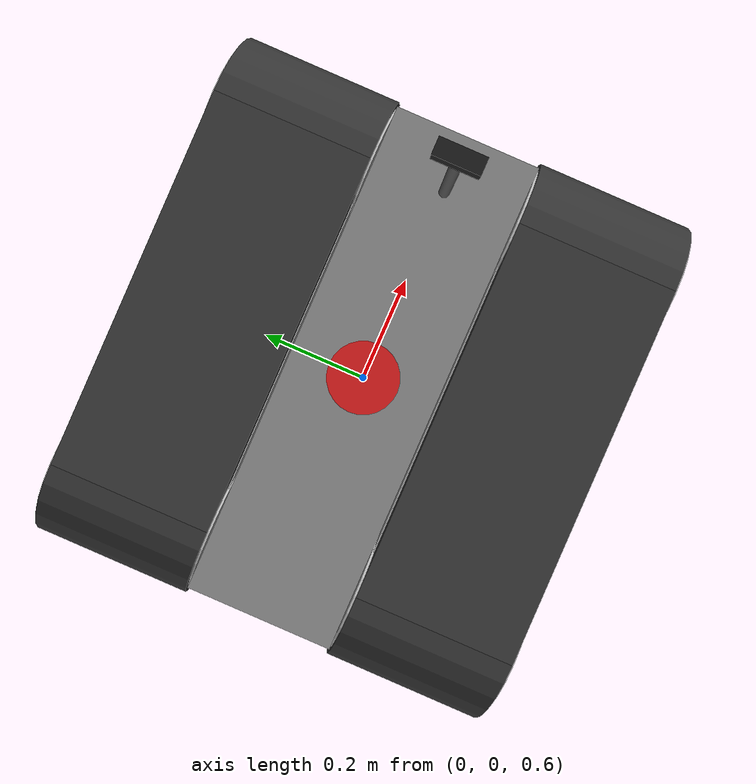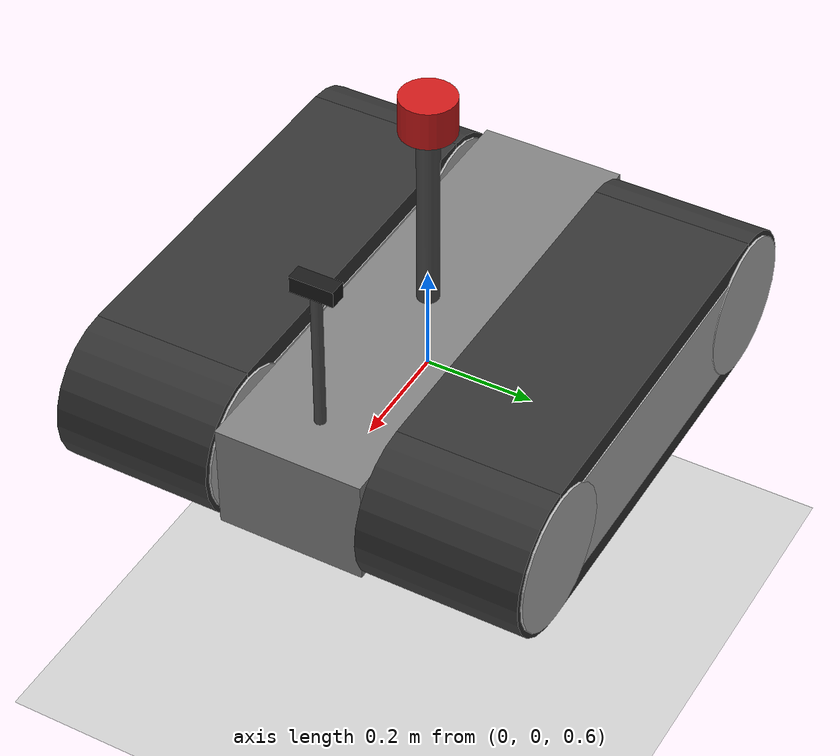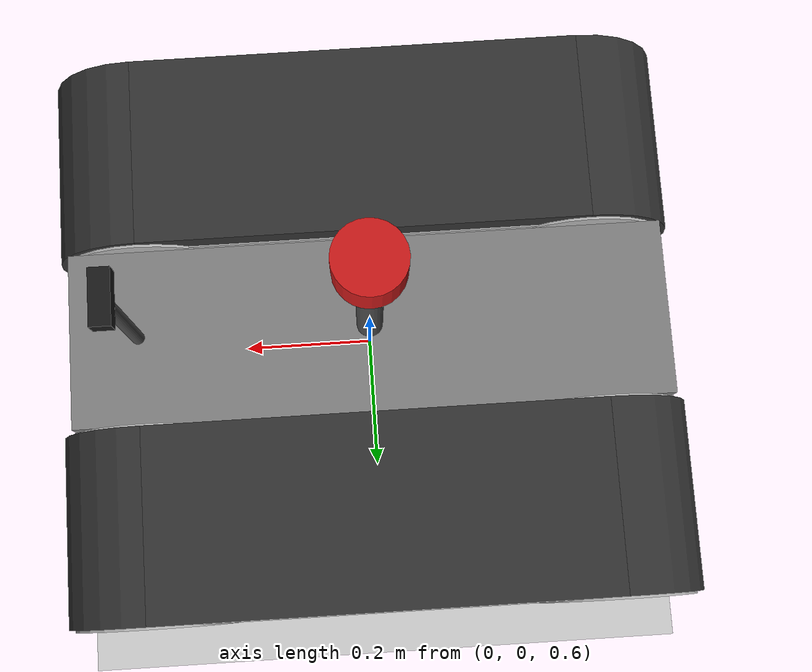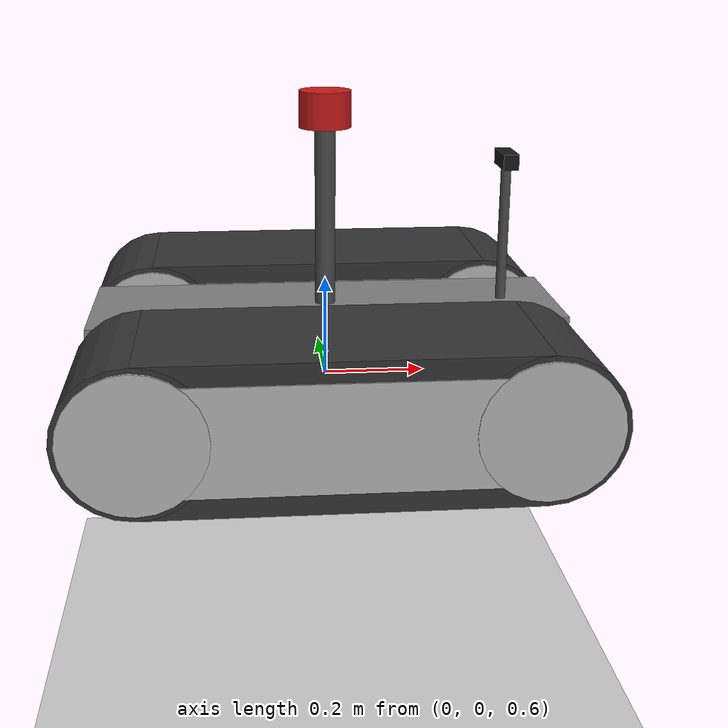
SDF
<sdf version="1.6">
 <world name="default">
  <include><uri>model://ground_plane</uri></include>
  <include><uri>model://sun</uri></include>
  <include><uri>model://two_track_robot</uri><pose>0 0 0.3 0 0 0</pose></include>
 </world>
</sdf>

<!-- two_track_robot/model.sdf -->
<sdf version='1.7'>
  <model name='two_track_robot'>
    <self_collide>false</self_collide>

    <!-- ================= BODY ================= -->
    <link name='body'>
      <visual name='lidar_mast'>
        <pose>0.0000 0 0.26965 0 0 0</pose>
        <geometry><cylinder><radius>0.020</radius><length>0.35930</length></cylinder></geometry>
        <material><ambient>0.3 0.3 0.3 1</ambient><diffuse>0.3 0.3 0.3 1</diffuse></material>
      </visual>
      <visual name='camera_mast'>
        <pose>0.3543 0 0.22885 0 0 0</pose>
        <geometry><cylinder><radius>0.010</radius><length>0.27770</length></cylinder></geometry>
        <material><ambient>0.3 0.3 0.3 1</ambient><diffuse>0.3 0.3 0.3 1</diffuse></material>
      </visual>
      <pose>0 0 0.35 0 0 0</pose>
      <inertial>
        <mass>33.151666</mass>
        <pose>0.0001169004 0 0.0001262709 0 0 0</pose>
        <inertia>
          <ixx>0.313416482</ixx>
          <ixy>0.000000</ixy>
          <ixz>-0.00148264304</ixz>
          <iyy>2.44082854</iyy>
          <iyz>0.000000</iyz>
          <izz>2.53009261</izz>
        </inertia>
      </inertial>

      <collision name='body_collision'>
        <geometry>
          <box>
            <size>0.918 0.270 0.20</size>
          </box>
        </geometry>
      </collision>

      <visual name='body_visual'>
        <geometry>
          <box>
            <size>0.918 0.270 0.20</size>
          </box>
        </geometry>
        <material>
          <ambient>0.5 0.5 0.5 1</ambient>
          <diffuse>0.5 0.5 0.5 1</diffuse>
        </material>
      </visual>

      <!-- ================= CAMARA ================= -->
      <visual name='camera_visual'>
        <pose>0.3543 0 0.3827 0 0 0</pose>
        <geometry>
          <box>
            <size>0.03 0.08 0.03</size>
          </box>
        </geometry>
        <material>
          <ambient>0.1 0.1 0.1 1</ambient>
          <diffuse>0.1 0.1 0.1 1</diffuse>
        </material>
      </visual>

      <sensor name='camera_sensor' type='camera'>
        <pose>0.3543 0 0.3827 0 0 0</pose>
        <update_rate>10</update_rate>
        <camera name='head'>
          <horizontal_fov>1.3962634</horizontal_fov>
          <image>
            <width>640</width>
            <height>480</height>
            <format>R8G8B8</format>
          </image>
          <clip>
            <near>0.02</near>
            <far>300</far>
          </clip>
          <noise>
            <type>gaussian</type>
            <mean>0.0</mean>
            <stddev>0.007</stddev>
          </noise>
        </camera>
        <plugin name='camera_controller' filename='libgazebo_ros_camera.so'>
          <alwaysOn>true</alwaysOn>
          <updateRate>0.0</updateRate>
          <cameraName>camera</cameraName>
          <imageTopicName>/camera/image_raw</imageTopicName>
          <cameraInfoTopicName>/camera/camera_info</cameraInfoTopicName>
          <frameName>example_two_track/camera_optical_frame</frameName>
          <hackBaseline>0.07</hackBaseline>
          <distortionK1>0.0</distortionK1>
          <distortionK2>0.0</distortionK2>
          <distortionK3>0.0</distortionK3>
          <distortionT1>0.0</distortionT1>
          <distortionT2>0.0</distortionT2>
        </plugin>
      </sensor>
    </link>

    <joint name='left_body_joint' type='fixed'>
      <parent>body</parent>
      <child>left_body</child>
    </joint>
    <!-- =============== LEFT TRACK ====================== -->

    <link name='left_body'>
    <pose relative_to="body">0 0.28545 0 0 -0 0</pose>
      <inertial>
        <mass>3.002202</mass>
        <inertia>
          <ixx>0.032524</ixx>
          <ixy>0.000000</ixy>
          <ixz>0.000000</ixz>
          <iyy>0.115710</iyy>
          <iyz>0.000000</iyz>
          <izz>0.128219</izz>
        </inertia>
      </inertial>
      <collision name='left_body_collision'>
        <pose>0 0 0 0 -0 0</pose>
        <geometry>
          <box>
            <size>0.65 0.30 0.2</size>
          </box>
        </geometry>
      </collision>
      <collision name='left_body_fixed_joint_lump__idler_collision_1'>
        <pose>-0.35 0 0 1.5708 -0 0</pose>
        <geometry>
          <cylinder>
            <length>0.30</length>
            <radius>0.128</radius>
          </cylinder>
        </geometry>
      </collision>
      <visual name='left_body_visual'>
        <pose>0 0 0 0 -0 0</pose>
        <geometry>
          <box>
            <size>0.65 0.296 0.2</size>
          </box>
        </geometry>
      </visual>
      <visual name='left_body_fixed_joint_lump__idler_visual_1'>
        <pose>-0.35 0 0 1.5708 -0 0</pose>
        <geometry>
          <cylinder>
            <length>0.30</length>
            <radius>0.128</radius>
          </cylinder>
        </geometry>
      </visual>
    </link>

    <joint name='left_sprocket_axle' type='revolute'>
      <pose relative_to='left_body'>0.35 0 0 0 -0 0</pose>
      <parent>left_body</parent>
      <child>left_sprocket</child>
      <axis>
        <xyz>0 1 0</xyz>
        <limit>
          <lower>-1e+16</lower>
          <upper>1e+16</upper>
                  <effort>55.946</effort>
        </limit>
        <dynamics>
          <spring_reference>0</spring_reference>
          <spring_stiffness>0</spring_stiffness>
        </dynamics>
      </axis>
    </joint>

    <link name='left_sprocket'>
      <pose relative_to='left_sprocket_axle'>0 0 0 0 -0 0</pose>
      <inertial>
        <pose>0 0 0 0 -0 0</pose>
        <mass>1.000734</mass>
        <inertia>
          <ixx>0.011605</ixx>
          <ixy>0.000000</ixy>
          <ixz>0.000000</ixz>
          <iyy>0.008198</iyy>
          <iyz>0.000000</iyz>
          <izz>0.011605</izz>
        </inertia>
      </inertial>
      <collision name='sprocket_collision'>
        <pose>0 0 0 1.5708 -0 0</pose>
        <geometry>
          <cylinder>
            <length>0.30</length>
            <radius>0.128</radius>
          </cylinder>
        </geometry>
      </collision>
      <visual name='sprocket_visual'>
        <pose>0 0 0 1.5708 -0 0</pose>
        <geometry>
          <cylinder>
            <length>0.30</length>
            <radius>0.128</radius>
          </cylinder>
        </geometry>
      </visual>
    </link>

    <link name='left_track_straight_segment_link0'>
      <pose relative_to="left_body">-0.35 0 0.138 0 -0 0</pose>
      <inertial>
        <pose>0.35 0 -0.02 0 -0 0</pose>
        <mass>0.375275</mass>
        <inertia>
          <ixx>0.003002</ixx>
          <ixy>0.000000</ixy>
          <ixz>0.000000</ixz>
          <iyy>0.023017</iyy>
          <iyz>0.000000</iyz>
          <izz>0.026019</izz>
        </inertia>
      </inertial>
      <collision name='collision'>
        <pose>0.35 0 -0.02 0 -0 0</pose>
        <geometry>
          <box>
            <size>0.70 0.3 0.04</size>
          </box>
        </geometry>
        <surface>
          <friction>
            <ode>
              <mu>1.0</mu>
              <mu2>0.75</mu2>
              <fdir1>1 0 0</fdir1>
            </ode>
          </friction>
          <contact>
            <ode>
              <kp>1000000.0</kp>
              <kd>1.0</kd>
              <min_depth>0.003</min_depth>
              <max_vel>1.0</max_vel>
            </ode>
          </contact>
        </surface>
      </collision>
      <visual name='visual'>
        <pose>0.35 0 -0.02 0 -0 0</pose>
        <geometry>
          <box>
            <size>0.70 0.292 0.04</size>
          </box>
        </geometry>
        <material>
          <ambient>0.1 0.1 0.3 1</ambient>
          <diffuse>0.2 0.2 0.2 1</diffuse>
          <specular>0 0 0 1</specular>
          <emissive>0 0 0 1</emissive>
        </material>
      </visual>
    </link>

    <link name='left_track_straight_segment_link1'>
      <pose relative_to="left_body">0.35 0 -0.138 3.14159 0 3.14159</pose>
      <inertial>
        <pose>0.35 0 -0.02 0 -0 0</pose>
        <mass>0.375275</mass>
        <inertia>
          <ixx>0.003002</ixx>
          <ixy>0.000000</ixy>
          <ixz>0.000000</ixz>
          <iyy>0.023017</iyy>
          <iyz>0.000000</iyz>
          <izz>0.026019</izz>
        </inertia>
      </inertial>
      <collision name='collision'>
        <pose>0.35 0 -0.02 0 -0 0</pose>
        <geometry>
          <box>
            <size>0.70 0.3 0.04</size>
          </box>
        </geometry>
        <surface>
          <friction>
            <ode>
              <mu>1.0</mu>
              <mu2>0.75</mu2>
              <fdir1>1 0 0</fdir1>
            </ode>
          </friction>
          <contact>
            <ode>
              <kp>1000000.0</kp>
              <kd>1.0</kd>
              <min_depth>0.003</min_depth>
              <max_vel>1.0</max_vel>
            </ode>
          </contact>
        </surface>
      </collision>
      <visual name='visual'>
        <pose>0.35 0 -0.02 0 -0 0</pose>
        <geometry>
          <box>
            <size>0.70 0.292 0.04</size>
          </box>
        </geometry>
        <material>
          <ambient>0.1 0.1 0.3 1</ambient>
          <diffuse>0.2 0.2 0.2 1</diffuse>
          <specular>0 0 0 1</specular>
          <emissive>0 0 0 1</emissive>
        </material>
      </visual>
    </link>

    <joint name='left_track_straight_segment_joint0' type='prismatic'>
      <child>left_track_straight_segment_link0</child>
      <parent>left_body</parent>
      <axis>
        <xyz>1 0 0</xyz>
        <use_parent_model_frame>0</use_parent_model_frame>
        <limit>
          <lower>-1e+16</lower>
          <upper>1e+16</upper>
        </limit>
      </axis>
      <physics>
        <ode>
          <implicit_spring_damper>1</implicit_spring_damper>
        </ode>
      </physics>
    </joint>

    <joint name='left_track_straight_segment_joint1' type='prismatic'>
      <child>left_track_straight_segment_link1</child>
      <parent>left_body</parent>
      <axis>
        <xyz>1 0 0</xyz>
        <use_parent_model_frame>0</use_parent_model_frame>
        <limit>
          <lower>-1e+16</lower>
          <upper>1e+16</upper>
        </limit>
      </axis>
      <physics>
        <ode>
          <implicit_spring_damper>1</implicit_spring_damper>
        </ode>
      </physics>
    </joint>

    <link name='left_track_arc_segment_link0'>
      <pose relative_to="left_body">0.35 0 0.138 0 -0 0</pose>
      <inertial>
        <pose>0 0 -0.138 1.5708 -0 0</pose>
        <mass>0.375275</mass>
        <inertia>
          <ixx>0.005004</ixx>
          <ixy>0.000000</ixy>
          <ixz>0.000000</ixz>
          <iyy>0.005004</iyy>
          <iyz>0.000000</iyz>
          <izz>0.001501</izz>
        </inertia>
      </inertial>
      <collision name='collision'>
        <pose>0 0 -0.138 1.5708 -0 0</pose>
        <geometry>
          <cylinder>
            <length>0.3</length>
            <radius>0.138</radius>
          </cylinder>
        </geometry>
        <surface>
          <friction>
            <ode>
              <mu>1.0</mu>
              <mu2>0.75</mu2>
              <fdir1>1 0 0</fdir1>
            </ode>
          </friction>
          <contact>
            <ode>
              <kp>1000000.0</kp>
              <kd>1.0</kd>
              <min_depth>0.003</min_depth>
              <max_vel>1.0</max_vel>
            </ode>
          </contact>
        </surface>
      </collision>
      <visual name='visual'>
        <pose>0 0 -0.138 1.5708 -0 0</pose>
        <geometry>
          <cylinder>
            <length>0.292</length>
            <radius>0.138</radius>
          </cylinder>
        </geometry>
        <material>
          <ambient>0.1 0.1 0.3 1</ambient>
          <diffuse>0.2 0.2 0.2 1</diffuse>
          <specular>0 0 0 1</specular>
          <emissive>0 0 0 1</emissive>
        </material>
      </visual>
    </link>

    <link name='left_track_arc_segment_link1'>
      <pose relative_to="left_body">-0.35 0 -0.138 3.14159 0 3.14159</pose>
      <inertial>
        <pose>0 0 -0.138 1.5708 -0 0</pose>
        <mass>0.375275</mass>
        <inertia>
          <ixx>0.005004</ixx>
          <ixy>0.000000</ixy>
          <ixz>0.000000</ixz>
          <iyy>0.005004</iyy>
          <iyz>0.000000</iyz>
          <izz>0.001501</izz>
        </inertia>
      </inertial>
      <collision name='collision'>
        <pose>0 0 -0.138 1.5708 -0 0</pose>
        <geometry>
          <cylinder>
            <length>0.3</length>
            <radius>0.138</radius>
          </cylinder>
        </geometry>
        <surface>
          <friction>
            <ode>
              <mu>1.0</mu>
              <mu2>0.75</mu2>
              <fdir1>1 0 0</fdir1>
            </ode>
          </friction>
          <contact>
            <ode>
              <kp>1000000.0</kp>
              <kd>1.0</kd>
              <min_depth>0.003</min_depth>
              <max_vel>1.0</max_vel>
            </ode>
          </contact>
        </surface>
      </collision>
      <visual name='visual'>
        <pose>0 0 -0.138 1.5708 -0 0</pose>
        <geometry>
          <cylinder>
            <length>0.292</length>
            <radius>0.138</radius>
          </cylinder>
        </geometry>
        <material>
          <ambient>0.1 0.1 0.3 1</ambient>
          <diffuse>0.2 0.2 0.2 1</diffuse>
          <specular>0 0 0 1</specular>
          <emissive>0 0 0 1</emissive>
        </material>
      </visual>
    </link>

    <joint name='left_track_arc_segment_joint0' type='revolute'>
      <child>left_track_arc_segment_link0</child>
      <parent>left_body</parent>
      <pose>0 0 -0.138 0 -0 0</pose>
      <axis>
        <xyz>0 1 0</xyz>
        <use_parent_model_frame>0</use_parent_model_frame>
        <limit>
          <lower>-1e+16</lower>
          <upper>1e+16</upper>
        </limit>
      </axis>
      <physics>
        <ode>
          <implicit_spring_damper>1</implicit_spring_damper>
        </ode>
      </physics>
    </joint>

    <joint name='left_track_arc_segment_joint1' type='revolute'>
      <child>left_track_arc_segment_link1</child>
      <parent>left_body</parent>
      <pose>0 0 -0.138 0 -0 0</pose>
      <axis>
        <xyz>0 1 0</xyz>
        <use_parent_model_frame>0</use_parent_model_frame>
        <limit>
          <lower>-1e+16</lower>
          <upper>1e+16</upper>
        </limit>
      </axis>
      <physics>
        <ode>
          <implicit_spring_damper>1</implicit_spring_damper>
        </ode>
      </physics>
    </joint>

    <plugin name='left_track' filename='libContinuousTrack.so'>
      <sprocket>
        <joint>left_sprocket_axle</joint>
        <pitch_diameter>0.276</pitch_diameter>
      </sprocket>
      <trajectory>
        <segment>
          <joint>left_track_straight_segment_joint0</joint>
          <end_position>0.70</end_position>
        </segment>
        <segment>
          <joint>left_track_arc_segment_joint0</joint>
          <end_position>3.141592653589793</end_position>
        </segment>
        <segment>
          <joint>left_track_straight_segment_joint1</joint>
          <end_position>0.70</end_position>
        </segment>
        <segment>
          <joint>left_track_arc_segment_joint1</joint>
          <end_position>3.141592653589793</end_position>
        </segment>
      </trajectory>
      <pattern>
        <elements_per_round>40</elements_per_round>
        <element>
          <collision name='collision'>
            <pose>0 0 0 0 0 0</pose>
            <geometry>
              <box>
                <size>0.02 0.3 0.02</size>
              </box>
            </geometry>
            <surface>
              <friction>
                <ode>
                  <mu>1.0</mu>
                  <mu2>0.75</mu2>
                  <fdir1>1 0 0</fdir1>
                </ode>
              </friction>
              <contact>
                <ode>
                  <kp>1000000.0</kp>
                  <kd>1.0</kd>
                  <min_depth>0.003</min_depth>
                  <max_vel>1.0</max_vel>
                </ode>
              </contact>
            </surface>
          </collision>
          <visual name='visual'>
            <pose>0 0 0 0 0 0</pose>
            <geometry>
              <box>
                <size>0.02 0.3 0.02</size>
              </box>
            </geometry>
            <material>
              <ambient>0.1 0.1 0.3 1</ambient>
              <diffuse>0.2 0.2 0.2 1</diffuse>
              <specular>0 0 0 1</specular>
              <emissive>0 0 0 1</emissive>
            </material>
          </visual>
        </element>
        <element>
          <collision name='collision'>
            <pose>0 0.15 0 1.5707963267948966 0 0</pose>
            <geometry>
              <polyline>
                <point>-0.02 -0.01</point>
                <point>-0.01 0.01</point>
                <point>0.01 0.01</point>
                <point>0.02 -0.01</point>
                <height>0.3</height>
              </polyline>
            </geometry>
            <surface>
              <friction>
                <ode>
                  <mu>1.0</mu>
                  <mu2>0.75</mu2>
                  <fdir1>1 0 0</fdir1>
                </ode>
              </friction>
              <contact>
                <ode>
                  <kp>1000000.0</kp>
                  <kd>1.0</kd>
                  <min_depth>0.003</min_depth>
                  <max_vel>1.0</max_vel>
                </ode>
              </contact>
            </surface>
          </collision>
          <visual name='visual'>
            <pose>0 0.15 0 1.5707963267948966 0 0</pose>
            <geometry>
              <polyline>
                <point>-0.02 -0.01</point>
                <point>-0.01 0.01</point>
                <point>0.01 0.01</point>
                <point>0.02 -0.01</point>
                <height>0.3</height>
              </polyline>
            </geometry>
            <material>
              <ambient>0.1 0.1 0.3 1</ambient>
              <diffuse>0.2 0.2 0.2 1</diffuse>
              <specular>0 0 0 1</specular>
              <emissive>0 0 0 1</emissive>
            </material>
          </visual>
        </element>
      </pattern>
    </plugin>

    <frame name='left_idler_axle' attached_to='left_body'>
      <pose relative_to="left_body">-0.35 0 0 0 -0 0</pose>
    </frame>
    <frame name='left_idler' attached_to='left_idler_axle'/>

    <!-- =============== RIGHT TRACK ===================== -->

    <joint name='right_body_joint' type='fixed'>
      <parent>body</parent>
      <child>right_body</child>
    </joint>

    <link name='right_body'>
    <pose relative_to="body">0 -0.28545 0 0 -0 0</pose>
      <inertial>
        <mass>3.002202</mass>
        <inertia>
          <ixx>0.032524</ixx>
          <ixy>0.000000</ixy>
          <ixz>0.000000</ixz>
          <iyy>0.115710</iyy>
          <iyz>0.000000</iyz>
          <izz>0.128219</izz>
        </inertia>
      </inertial>
      <collision name='right_body_collision'>
        <pose>0 0 0 0 -0 0</pose>
        <geometry>
          <box>
            <size>0.65 0.30 0.2</size>
          </box>
        </geometry>
      </collision>
      <collision name='right_body_fixed_joint_lump__idler_collision_1'>
        <pose>-0.35 0 0 1.5708 -0 0</pose>
        <geometry>
          <cylinder>
            <length>0.30</length>
            <radius>0.128</radius>
          </cylinder>
        </geometry>
      </collision>
      <visual name='right_body_visual'>
        <pose>0 0 0 0 -0 0</pose>
        <geometry>
          <box>
            <size>0.65 0.296 0.2</size>
          </box>
        </geometry>
      </visual>
      <visual name='right_body_fixed_joint_lump__idler_visual_1'>
        <pose>-0.35 0 0 1.5708 -0 0</pose>
        <geometry>
          <cylinder>
            <length>0.30</length>
            <radius>0.128</radius>
          </cylinder>
        </geometry>
      </visual>
    </link>

    <joint name='right_sprocket_axle' type='revolute'>
      <pose relative_to='right_body'>0.35 0 0 0 -0 0</pose>
      <parent>right_body</parent>
      <child>right_sprocket</child>
      <axis>
        <xyz>0 1 0</xyz>
        <limit>
          <lower>-1e+16</lower>
          <upper>1e+16</upper>
                  <effort>55.946</effort>
        </limit>
        <dynamics>
          <spring_reference>0</spring_reference>
          <spring_stiffness>0</spring_stiffness>
        </dynamics>
      </axis>
    </joint>

    <link name='right_sprocket'>
      <pose relative_to='right_sprocket_axle'>0 0 0 0 -0 0</pose>
      <inertial>
        <pose>0 0 0 0 -0 0</pose>
        <mass>1.000734</mass>
        <inertia>
          <ixx>0.011605</ixx>
          <ixy>0.000000</ixy>
          <ixz>0.000000</ixz>
          <iyy>0.008198</iyy>
          <iyz>0.000000</iyz>
          <izz>0.011605</izz>
        </inertia>
      </inertial>
      <collision name='sprocket_collision'>
        <pose>0 0 0 1.5708 -0 0</pose>
        <geometry>
          <cylinder>
            <length>0.30</length>
            <radius>0.128</radius>
          </cylinder>
        </geometry>
      </collision>
      <visual name='sprocket_visual'>
        <pose>0 0 0 1.5708 -0 0</pose>
        <geometry>
          <cylinder>
            <length>0.30</length>
            <radius>0.128</radius>
          </cylinder>
        </geometry>
      </visual>
    </link>

    <link name='right_track_straight_segment_link0'>
      <pose relative_to="right_body">-0.35 0 0.138 0 -0 0</pose>
      <inertial>
        <pose>0.35 0 -0.02 0 -0 0</pose>
        <mass>0.375275</mass>
        <inertia>
          <ixx>0.003002</ixx>
          <ixy>0.000000</ixy>
          <ixz>0.000000</ixz>
          <iyy>0.023017</iyy>
          <iyz>0.000000</iyz>
          <izz>0.026019</izz>
        </inertia>
      </inertial>
      <collision name='collision'>
        <pose>0.35 0 -0.02 0 -0 0</pose>
        <geometry>
          <box>
            <size>0.70 0.3 0.04</size>
          </box>
        </geometry>
        <surface>
          <friction>
            <ode>
              <mu>1.0</mu>
              <mu2>0.75</mu2>
              <fdir1>1 0 0</fdir1>
            </ode>
          </friction>
          <contact>
            <ode>
              <kp>1000000.0</kp>
              <kd>1.0</kd>
              <min_depth>0.003</min_depth>
              <max_vel>1.0</max_vel>
            </ode>
          </contact>
        </surface>
      </collision>
      <visual name='visual'>
        <pose>0.35 0 -0.02 0 -0 0</pose>
        <geometry>
          <box>
            <size>0.70 0.292 0.04</size>
          </box>
        </geometry>
        <material>
          <ambient>0.1 0.1 0.3 1</ambient>
          <diffuse>0.2 0.2 0.2 1</diffuse>
          <specular>0 0 0 1</specular>
          <emissive>0 0 0 1</emissive>
        </material>
      </visual>
    </link>

    <link name='right_track_straight_segment_link1'>
      <pose relative_to="right_body">0.35 0 -0.138 3.14159 0 3.14159</pose>
      <inertial>
        <pose>0.35 0 -0.02 0 -0 0</pose>
        <mass>0.375275</mass>
        <inertia>
          <ixx>0.003002</ixx>
          <ixy>0.000000</ixy>
          <ixz>0.000000</ixz>
          <iyy>0.023017</iyy>
          <iyz>0.000000</iyz>
          <izz>0.026019</izz>
        </inertia>
      </inertial>
      <collision name='collision'>
        <pose>0.35 0 -0.02 0 -0 0</pose>
        <geometry>
          <box>
            <size>0.70 0.3 0.04</size>
          </box>
        </geometry>
        <surface>
          <friction>
            <ode>
              <mu>1.0</mu>
              <mu2>0.75</mu2>
              <fdir1>1 0 0</fdir1>
            </ode>
          </friction>
          <contact>
            <ode>
              <kp>1000000.0</kp>
              <kd>1.0</kd>
              <min_depth>0.003</min_depth>
              <max_vel>1.0</max_vel>
            </ode>
          </contact>
        </surface>
      </collision>
      <visual name='visual'>
        <pose>0.35 0 -0.02 0 -0 0</pose>
        <geometry>
          <box>
            <size>0.70 0.292 0.04</size>
          </box>
        </geometry>
        <material>
          <ambient>0.1 0.1 0.3 1</ambient>
          <diffuse>0.2 0.2 0.2 1</diffuse>
          <specular>0 0 0 1</specular>
          <emissive>0 0 0 1</emissive>
        </material>
      </visual>
    </link>

    <joint name='right_track_straight_segment_joint0' type='prismatic'>
      <child>right_track_straight_segment_link0</child>
      <parent>right_body</parent>
      <axis>
        <xyz>1 0 0</xyz>
        <use_parent_model_frame>0</use_parent_model_frame>
        <limit>
          <lower>-1e+16</lower>
          <upper>1e+16</upper>
        </limit>
      </axis>
      <physics>
        <ode>
          <implicit_spring_damper>1</implicit_spring_damper>
        </ode>
      </physics>
    </joint>

    <joint name='right_track_straight_segment_joint1' type='prismatic'>
      <child>right_track_straight_segment_link1</child>
      <parent>right_body</parent>
      <axis>
        <xyz>1 0 0</xyz>
        <use_parent_model_frame>0</use_parent_model_frame>
        <limit>
          <lower>-1e+16</lower>
          <upper>1e+16</upper>
        </limit>
      </axis>
      <physics>
        <ode>
          <implicit_spring_damper>1</implicit_spring_damper>
        </ode>
      </physics>
    </joint>

    <link name='right_track_arc_segment_link0'>
      <pose relative_to="right_body">0.35 0 0.138 0 -0 0</pose>
      <inertial>
        <pose>0 0 -0.138 1.5708 -0 0</pose>
        <mass>0.375275</mass>
        <inertia>
          <ixx>0.005004</ixx>
          <ixy>0.000000</ixy>
          <ixz>0.000000</ixz>
          <iyy>0.005004</iyy>
          <iyz>0.000000</iyz>
          <izz>0.001501</izz>
        </inertia>
      </inertial>
      <collision name='collision'>
        <pose>0 0 -0.138 1.5708 -0 0</pose>
        <geometry>
          <cylinder>
            <length>0.3</length>
            <radius>0.138</radius>
          </cylinder>
        </geometry>
        <surface>
          <friction>
            <ode>
              <mu>1.0</mu>
              <mu2>0.75</mu2>
              <fdir1>1 0 0</fdir1>
            </ode>
          </friction>
          <contact>
            <ode>
              <kp>1000000.0</kp>
              <kd>1.0</kd>
              <min_depth>0.003</min_depth>
              <max_vel>1.0</max_vel>
            </ode>
          </contact>
        </surface>
      </collision>
      <visual name='visual'>
        <pose>0 0 -0.138 1.5708 -0 0</pose>
        <geometry>
          <cylinder>
            <length>0.292</length>
            <radius>0.138</radius>
          </cylinder>
        </geometry>
        <material>
          <ambient>0.1 0.1 0.3 1</ambient>
          <diffuse>0.2 0.2 0.2 1</diffuse>
          <specular>0 0 0 1</specular>
          <emissive>0 0 0 1</emissive>
        </material>
      </visual>
    </link>

    <link name='right_track_arc_segment_link1'>
      <pose relative_to="right_body">-0.35 0 -0.138 3.14159 0 3.14159</pose>
      <inertial>
        <pose>0 0 -0.138 1.5708 -0 0</pose>
        <mass>0.375275</mass>
        <inertia>
          <ixx>0.005004</ixx>
          <ixy>0.000000</ixy>
          <ixz>0.000000</ixz>
          <iyy>0.005004</iyy>
          <iyz>0.000000</iyz>
          <izz>0.001501</izz>
        </inertia>
      </inertial>
      <collision name='collision'>
        <pose>0 0 -0.138 1.5708 -0 0</pose>
        <geometry>
          <cylinder>
            <length>0.3</length>
            <radius>0.138</radius>
          </cylinder>
        </geometry>
        <surface>
          <friction>
            <ode>
              <mu>1.0</mu>
              <mu2>0.75</mu2>
              <fdir1>1 0 0</fdir1>
            </ode>
          </friction>
          <contact>
            <ode>
              <kp>1000000.0</kp>
              <kd>1.0</kd>
              <min_depth>0.003</min_depth>
              <max_vel>1.0</max_vel>
            </ode>
          </contact>
        </surface>
      </collision>
      <visual name='visual'>
        <pose>0 0 -0.138 1.5708 -0 0</pose>
        <geometry>
          <cylinder>
            <length>0.292</length>
            <radius>0.138</radius>
          </cylinder>
        </geometry>
        <material>
          <ambient>0.1 0.1 0.3 1</ambient>
          <diffuse>0.2 0.2 0.2 1</diffuse>
          <specular>0 0 0 1</specular>
          <emissive>0 0 0 1</emissive>
        </material>
      </visual>
    </link>

    <joint name='right_track_arc_segment_joint0' type='revolute'>
      <child>right_track_arc_segment_link0</child>
      <parent>right_body</parent>
      <pose>0 0 -0.138 0 -0 0</pose>
      <axis>
        <xyz>0 1 0</xyz>
        <use_parent_model_frame>0</use_parent_model_frame>
        <limit>
          <lower>-1e+16</lower>
          <upper>1e+16</upper>
        </limit>
      </axis>
      <physics>
        <ode>
          <implicit_spring_damper>1</implicit_spring_damper>
        </ode>
      </physics>
    </joint>

    <joint name='right_track_arc_segment_joint1' type='revolute'>
      <child>right_track_arc_segment_link1</child>
      <parent>right_body</parent>
      <pose>0 0 -0.138 0 -0 0</pose>
      <axis>
        <xyz>0 1 0</xyz>
        <use_parent_model_frame>0</use_parent_model_frame>
        <limit>
          <lower>-1e+16</lower>
          <upper>1e+16</upper>
        </limit>
      </axis>
      <physics>
        <ode>
          <implicit_spring_damper>1</implicit_spring_damper>
        </ode>
      </physics>
    </joint>

    <plugin name='right_track' filename='libContinuousTrack.so'>
      <sprocket>
        <joint>right_sprocket_axle</joint>
        <pitch_diameter>0.276</pitch_diameter>
      </sprocket>
      <trajectory>
        <segment>
          <joint>right_track_straight_segment_joint0</joint>
          <end_position>0.70</end_position>
        </segment>
        <segment>
          <joint>right_track_arc_segment_joint0</joint>
          <end_position>3.141592653589793</end_position>
        </segment>
        <segment>
          <joint>right_track_straight_segment_joint1</joint>
          <end_position>0.70</end_position>
        </segment>
        <segment>
          <joint>right_track_arc_segment_joint1</joint>
          <end_position>3.141592653589793</end_position>
        </segment>
      </trajectory>
      <pattern>
        <elements_per_round>40</elements_per_round>
        <element>
          <collision name='collision'>
            <pose>0 0 0 0 0 0</pose>
            <geometry>
              <box>
                <size>0.02 0.3 0.02</size>
              </box>
            </geometry>
            <surface>
              <friction>
                <ode>
                  <mu>1.0</mu>
                  <mu2>0.75</mu2>
                  <fdir1>1 0 0</fdir1>
                </ode>
              </friction>
              <contact>
                <ode>
                  <kp>1000000.0</kp>
                  <kd>1.0</kd>
                  <min_depth>0.003</min_depth>
                  <max_vel>1.0</max_vel>
                </ode>
              </contact>
            </surface>
          </collision>
          <visual name='visual'>
            <pose>0 0 0 0 0 0</pose>
            <geometry>
              <box>
                <size>0.02 0.3 0.02</size>
              </box>
            </geometry>
            <material>
              <ambient>0.1 0.1 0.3 1</ambient>
              <diffuse>0.2 0.2 0.2 1</diffuse>
              <specular>0 0 0 1</specular>
              <emissive>0 0 0 1</emissive>
            </material>
          </visual>
        </element>
        <element>
          <collision name='collision'>
            <pose>0 0.15 0 1.5707963267948966 0 0</pose>
            <geometry>
              <polyline>
                <point>-0.02 -0.01</point>
                <point>-0.01 0.01</point>
                <point>0.01 0.01</point>
                <point>0.02 -0.01</point>
                <height>0.3</height>
              </polyline>
            </geometry>
            <surface>
              <friction>
                <ode>
                  <mu>1.0</mu>
                  <mu2>0.75</mu2>
                  <fdir1>1 0 0</fdir1>
                </ode>
              </friction>
              <contact>
                <ode>
                  <kp>1000000.0</kp>
                  <kd>1.0</kd>
                  <min_depth>0.003</min_depth>
                  <max_vel>1.0</max_vel>
                </ode>
              </contact>
            </surface>
          </collision>
          <visual name='visual'>
            <pose>0 0.15 0 1.5707963267948966 0 0</pose>
            <geometry>
              <polyline>
                <point>-0.02 -0.01</point>
                <point>-0.01 0.01</point>
                <point>0.01 0.01</point>
                <point>0.02 -0.01</point>
                <height>0.3</height>
              </polyline>
            </geometry>
            <material>
              <ambient>0.1 0.1 0.3 1</ambient>
              <diffuse>0.2 0.2 0.2 1</diffuse>
              <specular>0 0 0 1</specular>
              <emissive>0 0 0 1</emissive>
            </material>
          </visual>
        </element>
      </pattern>
    </plugin>

    <frame name='right_idler_axle' attached_to='right_body'>
      <pose relative_to="right_body">-0.35 0 0 0 -0 0</pose>
    </frame>
    <frame name='right_idler' attached_to='right_idler_axle'/>

    <!-- Gazebo ROS Control Plugin -->
    <plugin name='gazebo_ros_control' filename='libgazebo_ros_control.so'>
      <robotNamespace>/example_two_track</robotNamespace>
      <robotSimType>gazebo_ros_control/DefaultRobotHWSim</robotSimType>
      <legacyModeNS>false</legacyModeNS>
    </plugin>

    <!-- ================= VELODYNE LIDAR ================= -->

    <joint name='velodyne_base_mount_joint' type='fixed'>
      <parent>body</parent>
      <child>velodyne_base_link</child>
    </joint>

    <link name='velodyne_base_link'>
      <pose relative_to="body">0 0 0.4843 0 0 0</pose>
      <inertial>
        <mass>0.825345</mass>
        <inertia>
          <ixx>0.000853</ixx>
          <ixy>0.000000</ixy>
          <ixz>0.000000</ixz>
          <iyy>0.000853</iyy>
          <iyz>0.000000</iyz>
          <izz>0.001032</izz>
        </inertia>
      </inertial>

      <collision name='velodyne_base_collision'>
        <geometry>
          <cylinder>
            <radius>0.05</radius>
            <length>0.07</length>
          </cylinder>
        </geometry>
      </collision>

      <visual name='velodyne_base_visual'>
        <geometry>
          <cylinder>
            <radius>0.05</radius>
            <length>0.07</length>
          </cylinder>
        </geometry>
        <material>
          <ambient>0.8 0.1 0.1 1</ambient>
          <diffuse>0.8 0.1 0.1 1</diffuse>
        </material>
      </visual>

      <!-- Sensor LiDAR -->
      <sensor name='velodyne-VLP16' type='gpu_ray'>
        <pose>0 0 0.0377 0 0 0</pose>
        <visualize>false</visualize>
        <update_rate>10</update_rate>
        <ray>
          <scan>
            <horizontal>
              <samples>1875</samples>
              <resolution>1</resolution>
              <min_angle>-3.14159</min_angle>
              <max_angle>3.14159</max_angle>
            </horizontal>
            <vertical>
              <samples>16</samples>
              <resolution>1</resolution>
              <min_angle>-0.261799</min_angle>
              <max_angle>0.261799</max_angle>
            </vertical>
          </scan>
          <range>
            <min>0.3</min>
            <max>101.0</max>
            <resolution>0.001</resolution>
          </range>
          <noise>
            <type>gaussian</type>
            <mean>0.0</mean>
            <stddev>0.011314</stddev>
          </noise>
        </ray>

        <plugin name='gazebo_ros_laser_controller' filename='libgazebo_ros_velodyne_gpu_laser.so'>
          <topicName>/velodyne_points</topicName>
          <frameName>example_two_track/velodyne_base_link</frameName>
          <min_range>0.9</min_range>
          <max_range>100.0</max_range>
          <gaussianNoise>0.0</gaussianNoise>
        </plugin>
      </sensor>
    </link>

    <!-- ================= IMU ================= -->

    <link name='imu_link'>

           OJO CON ESTE MODELO EN CONCRETO: su CM declarado no coincide con el
           del xacro (15.6 mm en x).  Aqui los idlers estan lumpeados dentro de
           left_body/right_body PERO SIN desplazar el origen inercial, asi que
           su masa cuenta en x = 0 en vez de en x = -0.35, mientras el sprocket
           sigue siendo un link propio en x = +0.35.  Los 2.00 kg de sprocket
           sin compensar dan 2.00*0.35/45 = 15.6 mm.  El numero de abajo es el
           CM que Gazebo SIMULA, que es el que ve el acelerometro.  Y los
           elementos de oruga que gazebo_continuous_track crea al cargar no
           estan en ningun fichero: si llevan masa, el CM real se mueve un
           poco mas y esto habria que medirlo en el banco.

           MUST MATCH the imu_joint origin in
           urdf_xacro/two_track_robot.urdf.xacro. -->
      <pose relative_to="body">0.015658 0.000000 0.008978 0 0 0</pose>
      <inertial>
        <mass>0.0149159</mass>
        <inertia>
          <ixx>3.60467583e-06</ixx>
          <ixy>0.000000</ixy>
          <ixz>0.000000</ixz>
          <iyy>3.60467583e-06</iyy>
          <iyz>0.000000</iyz>
          <izz>6.21495833e-06</izz>
        </inertia>
      </inertial>

      <collision name='imu_collision'>
        <geometry>
          <box>
            <size>0.05 0.05 0.02</size>
          </box>
        </geometry>
      </collision>

      <visual name='imu_visual'>
        <geometry>
          <box>
            <size>0.05 0.05 0.02</size>
          </box>
        </geometry>
        <material>
          <ambient>0.3 0.3 0.3 1</ambient>
          <diffuse>0.3 0.3 0.3 1</diffuse>
        </material>
      </visual>

      <!-- Sensor IMU -->
      <sensor name='imu_sensor' type='imu'>
        <always_on>1</always_on>
        <update_rate>100</update_rate>
        <visualize>true</visualize>
        <topic>__default_topic__</topic>
        <imu>
          <angular_velocity>
            <x>
              <noise type='gaussian'>
                <mean>0</mean>
                <stddev>0.009</stddev>
                <bias_mean>0.00075</bias_mean>
                <bias_stddev>0.005</bias_stddev>
                <dynamic_bias_stddev>0.00002</dynamic_bias_stddev>
                <dynamic_bias_correlation_time>400.0</dynamic_bias_correlation_time>
                <precision>0.00025</precision>
              </noise>
            </x>
            <y>
              <noise type='gaussian'>
                <mean>0</mean>
                <stddev>0.009</stddev>
                <bias_mean>0.00075</bias_mean>
                <bias_stddev>0.005</bias_stddev>
                <dynamic_bias_stddev>0.00002</dynamic_bias_stddev>
                <dynamic_bias_correlation_time>400.0</dynamic_bias_correlation_time>
                <precision>0.00025</precision>
              </noise>
            </y>
            <z>
              <noise type='gaussian'>
                <mean>0</mean>
                <stddev>0.009</stddev>
                <bias_mean>0.00075</bias_mean>
                <bias_stddev>0.005</bias_stddev>
                <dynamic_bias_stddev>0.00002</dynamic_bias_stddev>
                <dynamic_bias_correlation_time>400.0</dynamic_bias_correlation_time>
                <precision>0.00025</precision>
              </noise>
            </z>
          </angular_velocity>
          <linear_acceleration>
            <x>
              <noise type='gaussian'>
                <mean>0</mean>
                <stddev>0.021</stddev>
                <bias_mean>0.05</bias_mean>
                <bias_stddev>0.0075</bias_stddev>
                <dynamic_bias_stddev>0.000375</dynamic_bias_stddev>
                <dynamic_bias_correlation_time>175.0</dynamic_bias_correlation_time>
                <precision>0.005</precision>
              </noise>
            </x>
            <y>
              <noise type='gaussian'>
                <mean>0</mean>
                <stddev>0.021</stddev>
                <bias_mean>0.05</bias_mean>
                <bias_stddev>0.0075</bias_stddev>
                <dynamic_bias_stddev>0.000375</dynamic_bias_stddev>
                <dynamic_bias_correlation_time>175.0</dynamic_bias_correlation_time>
                <precision>0.005</precision>
              </noise>
            </y>
            <z>
              <noise type='gaussian'>
                <mean>0</mean>
                <stddev>0.021</stddev>
                <bias_mean>0.05</bias_mean>
                <bias_stddev>0.0075</bias_stddev>
                <dynamic_bias_stddev>0.000375</dynamic_bias_stddev>
                <dynamic_bias_correlation_time>175.0</dynamic_bias_correlation_time>
                <precision>0.005</precision>
              </noise>
            </z>
          </linear_acceleration>
        </imu>
        <plugin name='imu_plugin' filename='libgazebo_ros_imu_sensor.so'>
          <topicName>/imu/data_raw</topicName>
          <bodyName>imu_link</bodyName>
          <updateRateHZ>100.0</updateRateHZ>
          <gaussianNoise>0.0</gaussianNoise>
          <xyzOffset>0 0 0</xyzOffset>
          <rpyOffset>0 0 0</rpyOffset>
          <frameName>example_two_track/imu_link</frameName>
          <initialOrientationAsReference>false</initialOrientationAsReference>
        </plugin>
      </sensor>
    </link>

    <joint name='imu_joint' type='fixed'>
      <parent>body</parent>
      <child>imu_link</child>
    </joint>

  </model>

</sdf>
